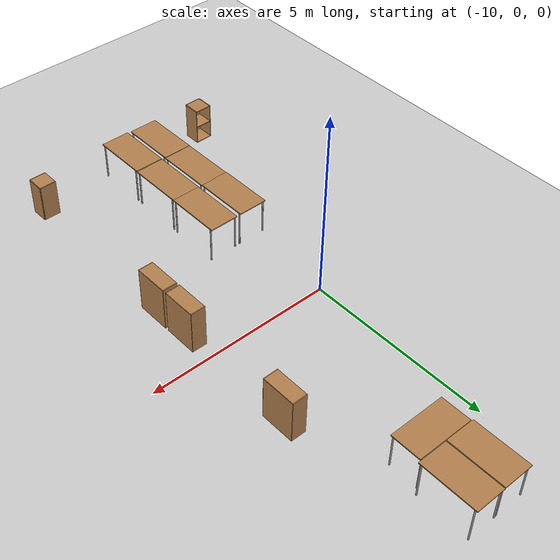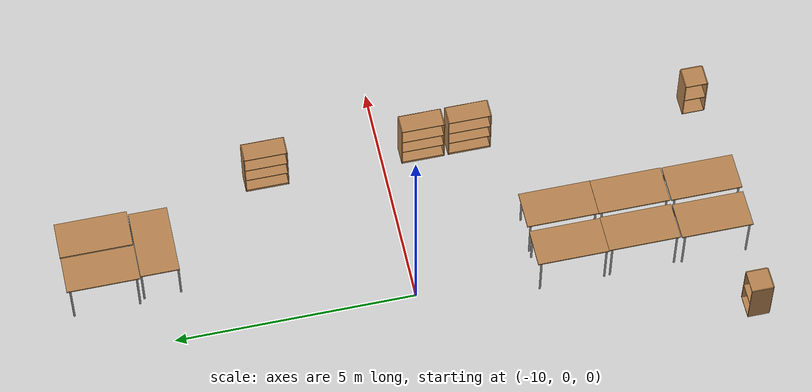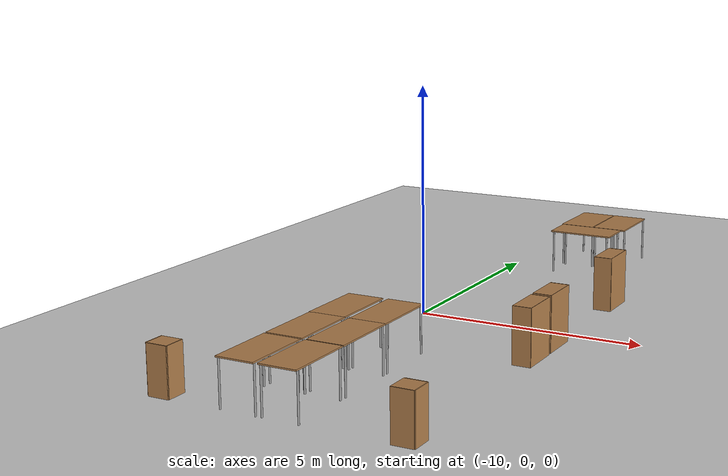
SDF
<sdf version="1.4">
 <world name="office">
  <model name="ground_plane">
   <static>1</static>
   <link name="link">
    <collision name="collision">
     <geometry><plane><normal>0 0 1</normal><size>100 100</size></plane></geometry>
     <surface><friction><ode><mu>100</mu><mu2>50</mu2></ode></friction></surface>
    </collision>
    <visual name="visual">
     <cast_shadows>0</cast_shadows>
     <geometry><plane><normal>0 0 1</normal><size>100 100</size></plane></geometry>
     <material>
      <script><uri>file://media/materials/scripts/gazebo.material</uri><name>Gazebo/Grey</name></script>
     </material>
    </visual>
    <velocity_decay><linear>0</linear><angular>0</angular></velocity_decay>
   </link>
  </model>
  <model name="bookshelf_1">
   <static>1</static>
   <link name="link">
    <inertial><mass>1</mass></inertial>
    <collision name="back">
     <pose>0 0.005 0.6 0 -0 0</pose>
     <geometry><box><size>0.9 0.01 1.2</size></box></geometry>
    </collision>
    <visual name="visual1">
     <pose>0 0.005 0.6 0 -0 0</pose>
     <geometry><box><size>0.9 0.01 1.2</size></box></geometry>
     <material>
      <script><uri>file://media/materials/scripts/gazebo.material</uri><name>Gazebo/Wood</name></script>
     </material>
    </visual>
    <collision name="left_side">
     <pose>0.45 -0.195 0.6 0 -0 0</pose>
     <geometry><box><size>0.02 0.4 1.2</size></box></geometry>
    </collision>
    <visual name="visual2">
     <pose>0.45 -0.195 0.6 0 -0 0</pose>
     <geometry><box><size>0.02 0.4 1.2</size></box></geometry>
     <material>
      <script><uri>file://media/materials/scripts/gazebo.material</uri><name>Gazebo/Wood</name></script>
     </material>
    </visual>
    <collision name="right_side">
     <pose>-0.45 -0.195 0.6 0 -0 0</pose>
     <geometry><box><size>0.02 0.4 1.2</size></box></geometry>
    </collision>
    <visual name="visual3">
     <pose>-0.45 -0.195 0.6 0 -0 0</pose>
     <geometry><box><size>0.02 0.4 1.2</size></box></geometry>
     <material>
      <script><uri>file://media/materials/scripts/gazebo.material</uri><name>Gazebo/Wood</name></script>
     </material>
    </visual>
    <collision name="bottom">
     <pose>0 -0.195 0.03 0 -0 0</pose>
     <geometry><box><size>0.88 0.4 0.06</size></box></geometry>
    </collision>
    <visual name="visual4">
     <pose>0 -0.195 0.03 0 -0 0</pose>
     <geometry><box><size>0.88 0.4 0.06</size></box></geometry>
     <material>
      <script><uri>file://media/materials/scripts/gazebo.material</uri><name>Gazebo/Wood</name></script>
     </material>
    </visual>
    <collision name="top">
     <pose>0 -0.195 1.19 0 -0 0</pose>
     <geometry><box><size>0.88 0.4 0.02</size></box></geometry>
    </collision>
    <visual name="visual5">
     <pose>0 -0.195 1.19 0 -0 0</pose>
     <geometry><box><size>0.88 0.4 0.02</size></box></geometry>
     <material>
      <script><uri>file://media/materials/scripts/gazebo.material</uri><name>Gazebo/Wood</name></script>
     </material>
    </visual>
    <collision name="low_shelf">
     <pose>0 -0.195 0.43 0 -0 0</pose>
     <geometry><box><size>0.88 0.4 0.02</size></box></geometry>
    </collision>
    <visual name="visual6">
     <pose>0 -0.195 0.43 0 -0 0</pose>
     <geometry><box><size>0.88 0.4 0.02</size></box></geometry>
     <material>
      <script><uri>file://media/materials/scripts/gazebo.material</uri><name>Gazebo/Wood</name></script>
     </material>
    </visual>
    <collision name="high_shelf">
     <pose>0 -0.195 0.8 0 -0 0</pose>
     <geometry><box><size>0.88 0.4 0.02</size></box></geometry>
    </collision>
    <visual name="visual7">
     <pose>0 -0.195 0.8 0 -0 0</pose>
     <geometry><box><size>0.88 0.4 0.02</size></box></geometry>
     <material>
      <script><uri>file://media/materials/scripts/gazebo.material</uri><name>Gazebo/Wood</name></script>
     </material>
    </visual>
    <velocity_decay><linear>0</linear><angular>0</angular></velocity_decay>
   </link>
   <pose>-6.43362 -0.854628 0 0 0 -1.5708</pose>
  </model>
  <model name="bookshelf_2">
   <static>1</static>
   <link name="link">
    <inertial><mass>1</mass></inertial>
    <collision name="back">
     <pose>0 0.005 0.6 0 -0 0</pose>
     <geometry><box><size>0.9 0.01 1.2</size></box></geometry>
    </collision>
    <visual name="visual1">
     <pose>0 0.005 0.6 0 -0 0</pose>
     <geometry><box><size>0.9 0.01 1.2</size></box></geometry>
     <material>
      <script><uri>file://media/materials/scripts/gazebo.material</uri><name>Gazebo/Wood</name></script>
     </material>
    </visual>
    <collision name="left_side">
     <pose>0.45 -0.195 0.6 0 -0 0</pose>
     <geometry><box><size>0.02 0.4 1.2</size></box></geometry>
    </collision>
    <visual name="visual2">
     <pose>0.45 -0.195 0.6 0 -0 0</pose>
     <geometry><box><size>0.02 0.4 1.2</size></box></geometry>
     <material>
      <script><uri>file://media/materials/scripts/gazebo.material</uri><name>Gazebo/Wood</name></script>
     </material>
    </visual>
    <collision name="right_side">
     <pose>-0.45 -0.195 0.6 0 -0 0</pose>
     <geometry><box><size>0.02 0.4 1.2</size></box></geometry>
    </collision>
    <visual name="visual3">
     <pose>-0.45 -0.195 0.6 0 -0 0</pose>
     <geometry><box><size>0.02 0.4 1.2</size></box></geometry>
     <material>
      <script><uri>file://media/materials/scripts/gazebo.material</uri><name>Gazebo/Wood</name></script>
     </material>
    </visual>
    <collision name="bottom">
     <pose>0 -0.195 0.03 0 -0 0</pose>
     <geometry><box><size>0.88 0.4 0.06</size></box></geometry>
    </collision>
    <visual name="visual4">
     <pose>0 -0.195 0.03 0 -0 0</pose>
     <geometry><box><size>0.88 0.4 0.06</size></box></geometry>
     <material>
      <script><uri>file://media/materials/scripts/gazebo.material</uri><name>Gazebo/Wood</name></script>
     </material>
    </visual>
    <collision name="top">
     <pose>0 -0.195 1.19 0 -0 0</pose>
     <geometry><box><size>0.88 0.4 0.02</size></box></geometry>
    </collision>
    <visual name="visual5">
     <pose>0 -0.195 1.19 0 -0 0</pose>
     <geometry><box><size>0.88 0.4 0.02</size></box></geometry>
     <material>
      <script><uri>file://media/materials/scripts/gazebo.material</uri><name>Gazebo/Wood</name></script>
     </material>
    </visual>
    <collision name="low_shelf">
     <pose>0 -0.195 0.43 0 -0 0</pose>
     <geometry><box><size>0.88 0.4 0.02</size></box></geometry>
    </collision>
    <visual name="visual6">
     <pose>0 -0.195 0.43 0 -0 0</pose>
     <geometry><box><size>0.88 0.4 0.02</size></box></geometry>
     <material>
      <script><uri>file://media/materials/scripts/gazebo.material</uri><name>Gazebo/Wood</name></script>
     </material>
    </visual>
    <collision name="high_shelf">
     <pose>0 -0.195 0.8 0 -0 0</pose>
     <geometry><box><size>0.88 0.4 0.02</size></box></geometry>
    </collision>
    <visual name="visual7">
     <pose>0 -0.195 0.8 0 -0 0</pose>
     <geometry><box><size>0.88 0.4 0.02</size></box></geometry>
     <material>
      <script><uri>file://media/materials/scripts/gazebo.material</uri><name>Gazebo/Wood</name></script>
     </material>
    </visual>
    <velocity_decay><linear>0</linear><angular>0</angular></velocity_decay>
   </link>
   <pose>-6.42598 -1.85096 0 0 0 -1.5708</pose>
  </model>
  <model name="cabinet_4">
   <static>1</static>
   <link name="cabinet_bottom_plate">
    <inertial>
     <pose>0 0 -1 0 -0 0</pose>
     <inertia><ixx>2.05</ixx><ixy>0</ixy><ixz>0</ixz><iyy>2.05</iyy><iyz>0</iyz><izz>2.05</izz></inertia>
     <mass>25</mass>
    </inertial>
    <collision name="cabinet_bottom_plate_geom">
     <pose>0 0 0.01 0 -0 0</pose>
     <geometry><box><size>0.45 0.45 0.02</size></box></geometry>
    </collision>
    <visual name="cabinet_bottom_plate_geom_visual">
     <pose>0 0 0.01 0 -0 0</pose>
     <geometry><box><size>0.45 0.45 0.02</size></box></geometry>
     <material>
      <script><uri>file://media/materials/scripts/gazebo.material</uri><name>Gazebo/Wood</name></script>
     </material>
    </visual>
    <collision name="cabinet_bottom_plate_geom_cabinet_back_plate">
     <pose>0.235 0 0.51 0 -0 0</pose>
     <geometry><box><size>0.02 0.45 1.02</size></box></geometry>
    </collision>
    <visual name="cabinet_bottom_plate_geom_cabinet_back_plate_visual">
     <pose>0.235 0 0.51 0 -0 0</pose>
     <geometry><box><size>0.02 0.45 1.02</size></box></geometry>
     <material>
      <script><uri>file://media/materials/scripts/gazebo.material</uri><name>Gazebo/Wood</name></script>
     </material>
    </visual>
    <collision name="cabinet_bottom_plate_geom_cabinet_left_plate">
     <pose>0 0.235 0.51 0 -0 0</pose>
     <geometry><box><size>0.45 0.02 1.02</size></box></geometry>
    </collision>
    <visual name="cabinet_bottom_plate_geom_cabinet_left_plate_visual">
     <pose>0 0.235 0.51 0 -0 0</pose>
     <geometry><box><size>0.45 0.02 1.02</size></box></geometry>
     <material>
      <script><uri>file://media/materials/scripts/gazebo.material</uri><name>Gazebo/Wood</name></script>
     </material>
    </visual>
    <collision name="cabinet_bottom_plate_geom_cabinet_middle_plate">
     <pose>0 0 0.51 0 -0 0</pose>
     <geometry><box><size>0.45 0.45 0.02</size></box></geometry>
    </collision>
    <visual name="cabinet_bottom_plate_geom_cabinet_middle_plate_visual">
     <pose>0 0 0.51 0 -0 0</pose>
     <geometry><box><size>0.45 0.45 0.02</size></box></geometry>
     <material>
      <script><uri>file://media/materials/scripts/gazebo.material</uri><name>Gazebo/Wood</name></script>
     </material>
    </visual>
    <collision name="cabinet_bottom_plate_geom_cabinet_right_plate">
     <pose>0 -0.235 0.51 0 -0 0</pose>
     <geometry><box><size>0.45 0.02 1.02</size></box></geometry>
    </collision>
    <visual name="cabinet_bottom_plate_geom_cabinet_right_plate_visual">
     <pose>0 -0.235 0.51 0 -0 0</pose>
     <geometry><box><size>0.45 0.02 1.02</size></box></geometry>
     <material>
      <script><uri>file://media/materials/scripts/gazebo.material</uri><name>Gazebo/Wood</name></script>
     </material>
    </visual>
    <collision name="cabinet_bottom_plate_geom_cabinet_top_plate">
     <pose>0 0 1.01 0 -0 0</pose>
     <geometry><box><size>0.45 0.45 0.02</size></box></geometry>
    </collision>
    <visual name="cabinet_bottom_plate_geom_cabinet_top_plate_visual">
     <pose>0 0 1.01 0 -0 0</pose>
     <geometry><box><size>0.45 0.45 0.02</size></box></geometry>
     <material>
      <script><uri>file://media/materials/scripts/gazebo.material</uri><name>Gazebo/Wood</name></script>
     </material>
    </visual>
    <velocity_decay><linear>0</linear><angular>0</angular></velocity_decay>
   </link>
   <pose>-11.7069 -6.71894 0 0 0 -1.5708</pose>
  </model>
  <model name="cabinet_5">
   <static>1</static>
   <link name="cabinet_bottom_plate">
    <inertial>
     <pose>0 0 -1 0 -0 0</pose>
     <inertia><ixx>2.05</ixx><ixy>0</ixy><ixz>0</ixz><iyy>2.05</iyy><iyz>0</iyz><izz>2.05</izz></inertia>
     <mass>25</mass>
    </inertial>
    <collision name="cabinet_bottom_plate_geom">
     <pose>0 0 0.01 0 -0 0</pose>
     <geometry><box><size>0.45 0.45 0.02</size></box></geometry>
    </collision>
    <visual name="cabinet_bottom_plate_geom_visual">
     <pose>0 0 0.01 0 -0 0</pose>
     <geometry><box><size>0.45 0.45 0.02</size></box></geometry>
     <material>
      <script><uri>file://media/materials/scripts/gazebo.material</uri><name>Gazebo/Wood</name></script>
     </material>
    </visual>
    <collision name="cabinet_bottom_plate_geom_cabinet_back_plate">
     <pose>0.235 0 0.51 0 -0 0</pose>
     <geometry><box><size>0.02 0.45 1.02</size></box></geometry>
    </collision>
    <visual name="cabinet_bottom_plate_geom_cabinet_back_plate_visual">
     <pose>0.235 0 0.51 0 -0 0</pose>
     <geometry><box><size>0.02 0.45 1.02</size></box></geometry>
     <material>
      <script><uri>file://media/materials/scripts/gazebo.material</uri><name>Gazebo/Wood</name></script>
     </material>
    </visual>
    <collision name="cabinet_bottom_plate_geom_cabinet_left_plate">
     <pose>0 0.235 0.51 0 -0 0</pose>
     <geometry><box><size>0.45 0.02 1.02</size></box></geometry>
    </collision>
    <visual name="cabinet_bottom_plate_geom_cabinet_left_plate_visual">
     <pose>0 0.235 0.51 0 -0 0</pose>
     <geometry><box><size>0.45 0.02 1.02</size></box></geometry>
     <material>
      <script><uri>file://media/materials/scripts/gazebo.material</uri><name>Gazebo/Wood</name></script>
     </material>
    </visual>
    <collision name="cabinet_bottom_plate_geom_cabinet_middle_plate">
     <pose>0 0 0.51 0 -0 0</pose>
     <geometry><box><size>0.45 0.45 0.02</size></box></geometry>
    </collision>
    <visual name="cabinet_bottom_plate_geom_cabinet_middle_plate_visual">
     <pose>0 0 0.51 0 -0 0</pose>
     <geometry><box><size>0.45 0.45 0.02</size></box></geometry>
     <material>
      <script><uri>file://media/materials/scripts/gazebo.material</uri><name>Gazebo/Wood</name></script>
     </material>
    </visual>
    <collision name="cabinet_bottom_plate_geom_cabinet_right_plate">
     <pose>0 -0.235 0.51 0 -0 0</pose>
     <geometry><box><size>0.45 0.02 1.02</size></box></geometry>
    </collision>
    <visual name="cabinet_bottom_plate_geom_cabinet_right_plate_visual">
     <pose>0 -0.235 0.51 0 -0 0</pose>
     <geometry><box><size>0.45 0.02 1.02</size></box></geometry>
     <material>
      <script><uri>file://media/materials/scripts/gazebo.material</uri><name>Gazebo/Wood</name></script>
     </material>
    </visual>
    <collision name="cabinet_bottom_plate_geom_cabinet_top_plate">
     <pose>0 0 1.01 0 -0 0</pose>
     <geometry><box><size>0.45 0.45 0.02</size></box></geometry>
    </collision>
    <visual name="cabinet_bottom_plate_geom_cabinet_top_plate_visual">
     <pose>0 0 1.01 0 -0 0</pose>
     <geometry><box><size>0.45 0.45 0.02</size></box></geometry>
     <material>
      <script><uri>file://media/materials/scripts/gazebo.material</uri><name>Gazebo/Wood</name></script>
     </material>
    </visual>
    <velocity_decay><linear>0</linear><angular>0</angular></velocity_decay>
   </link>
   <pose>-6.66649 -6.70658 0 0 -0 0</pose>
  </model>
  <model name="bookshelf_12">
   <static>1</static>
   <link name="link">
    <inertial><mass>1</mass></inertial>
    <collision name="back">
     <pose>0 0.005 0.6 0 -0 0</pose>
     <geometry><box><size>0.9 0.01 1.2</size></box></geometry>
    </collision>
    <visual name="visual1">
     <pose>0 0.005 0.6 0 -0 0</pose>
     <geometry><box><size>0.9 0.01 1.2</size></box></geometry>
     <material>
      <script><uri>file://media/materials/scripts/gazebo.material</uri><name>Gazebo/Wood</name></script>
     </material>
    </visual>
    <collision name="left_side">
     <pose>0.45 -0.195 0.6 0 -0 0</pose>
     <geometry><box><size>0.02 0.4 1.2</size></box></geometry>
    </collision>
    <visual name="visual2">
     <pose>0.45 -0.195 0.6 0 -0 0</pose>
     <geometry><box><size>0.02 0.4 1.2</size></box></geometry>
     <material>
      <script><uri>file://media/materials/scripts/gazebo.material</uri><name>Gazebo/Wood</name></script>
     </material>
    </visual>
    <collision name="right_side">
     <pose>-0.45 -0.195 0.6 0 -0 0</pose>
     <geometry><box><size>0.02 0.4 1.2</size></box></geometry>
    </collision>
    <visual name="visual3">
     <pose>-0.45 -0.195 0.6 0 -0 0</pose>
     <geometry><box><size>0.02 0.4 1.2</size></box></geometry>
     <material>
      <script><uri>file://media/materials/scripts/gazebo.material</uri><name>Gazebo/Wood</name></script>
     </material>
    </visual>
    <collision name="bottom">
     <pose>0 -0.195 0.03 0 -0 0</pose>
     <geometry><box><size>0.88 0.4 0.06</size></box></geometry>
    </collision>
    <visual name="visual4">
     <pose>0 -0.195 0.03 0 -0 0</pose>
     <geometry><box><size>0.88 0.4 0.06</size></box></geometry>
     <material>
      <script><uri>file://media/materials/scripts/gazebo.material</uri><name>Gazebo/Wood</name></script>
     </material>
    </visual>
    <collision name="top">
     <pose>0 -0.195 1.19 0 -0 0</pose>
     <geometry><box><size>0.88 0.4 0.02</size></box></geometry>
    </collision>
    <visual name="visual5">
     <pose>0 -0.195 1.19 0 -0 0</pose>
     <geometry><box><size>0.88 0.4 0.02</size></box></geometry>
     <material>
      <script><uri>file://media/materials/scripts/gazebo.material</uri><name>Gazebo/Wood</name></script>
     </material>
    </visual>
    <collision name="low_shelf">
     <pose>0 -0.195 0.43 0 -0 0</pose>
     <geometry><box><size>0.88 0.4 0.02</size></box></geometry>
    </collision>
    <visual name="visual6">
     <pose>0 -0.195 0.43 0 -0 0</pose>
     <geometry><box><size>0.88 0.4 0.02</size></box></geometry>
     <material>
      <script><uri>file://media/materials/scripts/gazebo.material</uri><name>Gazebo/Wood</name></script>
     </material>
    </visual>
    <collision name="high_shelf">
     <pose>0 -0.195 0.8 0 -0 0</pose>
     <geometry><box><size>0.88 0.4 0.02</size></box></geometry>
    </collision>
    <visual name="visual7">
     <pose>0 -0.195 0.8 0 -0 0</pose>
     <geometry><box><size>0.88 0.4 0.02</size></box></geometry>
     <material>
      <script><uri>file://media/materials/scripts/gazebo.material</uri><name>Gazebo/Wood</name></script>
     </material>
    </visual>
    <velocity_decay><linear>0</linear><angular>0</angular></velocity_decay>
   </link>
   <pose>-6.41767 2.4645 0 0 0 -1.5708</pose>
  </model>
  <model name="table_0">
   <static>1</static>
   <link name="link">
    <collision name="surface">
     <pose>0 0 1 0 -0 0</pose>
     <geometry><box><size>1.5 0.8 0.03</size></box></geometry>
    </collision>
    <visual name="visual1">
     <pose>0 0 1 0 -0 0</pose>
     <geometry><box><size>1.5 0.8 0.03</size></box></geometry>
     <material>
      <script><uri>file://media/materials/scripts/gazebo.material</uri><name>Gazebo/Wood</name></script>
     </material>
    </visual>
    <collision name="front_left_leg">
     <pose>0.68 0.38 0.5 0 -0 0</pose>
     <geometry><cylinder><radius>0.02</radius><length>1</length></cylinder></geometry>
    </collision>
    <visual name="front_left_leg">
     <pose>0.68 0.38 0.5 0 -0 0</pose>
     <geometry><cylinder><radius>0.02</radius><length>1</length></cylinder></geometry>
     <material>
      <script><uri>file://media/materials/scripts/gazebo.material</uri><name>Gazebo/Grey</name></script>
     </material>
    </visual>
    <collision name="front_right_leg">
     <pose>0.68 -0.38 0.5 0 -0 0</pose>
     <geometry><cylinder><radius>0.02</radius><length>1</length></cylinder></geometry>
    </collision>
    <visual name="front_right_leg">
     <pose>0.68 -0.38 0.5 0 -0 0</pose>
     <geometry><cylinder><radius>0.02</radius><length>1</length></cylinder></geometry>
     <material>
      <script><uri>file://media/materials/scripts/gazebo.material</uri><name>Gazebo/Grey</name></script>
     </material>
    </visual>
    <collision name="back_right_leg">
     <pose>-0.68 -0.38 0.5 0 -0 0</pose>
     <geometry><cylinder><radius>0.02</radius><length>1</length></cylinder></geometry>
    </collision>
    <visual name="back_right_leg">
     <pose>-0.68 -0.38 0.5 0 -0 0</pose>
     <geometry><cylinder><radius>0.02</radius><length>1</length></cylinder></geometry>
     <material>
      <script><uri>file://media/materials/scripts/gazebo.material</uri><name>Gazebo/Grey</name></script>
     </material>
    </visual>
    <collision name="back_left_leg">
     <pose>-0.68 0.38 0.5 0 -0 0</pose>
     <geometry><cylinder><radius>0.02</radius><length>1</length></cylinder></geometry>
    </collision>
    <visual name="back_left_leg">
     <pose>-0.68 0.38 0.5 0 -0 0</pose>
     <geometry><cylinder><radius>0.02</radius><length>1</length></cylinder></geometry>
     <material>
      <script><uri>file://media/materials/scripts/gazebo.material</uri><name>Gazebo/Grey</name></script>
     </material>
    </visual>
    <velocity_decay><linear>0</linear><angular>0</angular></velocity_decay>
   </link>
   <pose>-9.09182 -4.68955 0 0 0 -1.5708</pose>
  </model>
  <model name="table_1">
   <static>1</static>
   <link name="link">
    <collision name="surface">
     <pose>0 0 1 0 -0 0</pose>
     <geometry><box><size>1.5 0.8 0.03</size></box></geometry>
    </collision>
    <visual name="visual1">
     <pose>0 0 1 0 -0 0</pose>
     <geometry><box><size>1.5 0.8 0.03</size></box></geometry>
     <material>
      <script><uri>file://media/materials/scripts/gazebo.material</uri><name>Gazebo/Wood</name></script>
     </material>
    </visual>
    <collision name="front_left_leg">
     <pose>0.68 0.38 0.5 0 -0 0</pose>
     <geometry><cylinder><radius>0.02</radius><length>1</length></cylinder></geometry>
    </collision>
    <visual name="front_left_leg">
     <pose>0.68 0.38 0.5 0 -0 0</pose>
     <geometry><cylinder><radius>0.02</radius><length>1</length></cylinder></geometry>
     <material>
      <script><uri>file://media/materials/scripts/gazebo.material</uri><name>Gazebo/Grey</name></script>
     </material>
    </visual>
    <collision name="front_right_leg">
     <pose>0.68 -0.38 0.5 0 -0 0</pose>
     <geometry><cylinder><radius>0.02</radius><length>1</length></cylinder></geometry>
    </collision>
    <visual name="front_right_leg">
     <pose>0.68 -0.38 0.5 0 -0 0</pose>
     <geometry><cylinder><radius>0.02</radius><length>1</length></cylinder></geometry>
     <material>
      <script><uri>file://media/materials/scripts/gazebo.material</uri><name>Gazebo/Grey</name></script>
     </material>
    </visual>
    <collision name="back_right_leg">
     <pose>-0.68 -0.38 0.5 0 -0 0</pose>
     <geometry><cylinder><radius>0.02</radius><length>1</length></cylinder></geometry>
    </collision>
    <visual name="back_right_leg">
     <pose>-0.68 -0.38 0.5 0 -0 0</pose>
     <geometry><cylinder><radius>0.02</radius><length>1</length></cylinder></geometry>
     <material>
      <script><uri>file://media/materials/scripts/gazebo.material</uri><name>Gazebo/Grey</name></script>
     </material>
    </visual>
    <collision name="back_left_leg">
     <pose>-0.68 0.38 0.5 0 -0 0</pose>
     <geometry><cylinder><radius>0.02</radius><length>1</length></cylinder></geometry>
    </collision>
    <visual name="back_left_leg">
     <pose>-0.68 0.38 0.5 0 -0 0</pose>
     <geometry><cylinder><radius>0.02</radius><length>1</length></cylinder></geometry>
     <material>
      <script><uri>file://media/materials/scripts/gazebo.material</uri><name>Gazebo/Grey</name></script>
     </material>
    </visual>
    <velocity_decay><linear>0</linear><angular>0</angular></velocity_decay>
   </link>
   <pose>-9.10009 -6.21783 0 0 0 -1.5708</pose>
  </model>
  <model name="table_2">
   <static>1</static>
   <link name="link">
    <collision name="surface">
     <pose>0 0 1 0 -0 0</pose>
     <geometry><box><size>1.5 0.8 0.03</size></box></geometry>
    </collision>
    <visual name="visual1">
     <pose>0 0 1 0 -0 0</pose>
     <geometry><box><size>1.5 0.8 0.03</size></box></geometry>
     <material>
      <script><uri>file://media/materials/scripts/gazebo.material</uri><name>Gazebo/Wood</name></script>
     </material>
    </visual>
    <collision name="front_left_leg">
     <pose>0.68 0.38 0.5 0 -0 0</pose>
     <geometry><cylinder><radius>0.02</radius><length>1</length></cylinder></geometry>
    </collision>
    <visual name="front_left_leg">
     <pose>0.68 0.38 0.5 0 -0 0</pose>
     <geometry><cylinder><radius>0.02</radius><length>1</length></cylinder></geometry>
     <material>
      <script><uri>file://media/materials/scripts/gazebo.material</uri><name>Gazebo/Grey</name></script>
     </material>
    </visual>
    <collision name="front_right_leg">
     <pose>0.68 -0.38 0.5 0 -0 0</pose>
     <geometry><cylinder><radius>0.02</radius><length>1</length></cylinder></geometry>
    </collision>
    <visual name="front_right_leg">
     <pose>0.68 -0.38 0.5 0 -0 0</pose>
     <geometry><cylinder><radius>0.02</radius><length>1</length></cylinder></geometry>
     <material>
      <script><uri>file://media/materials/scripts/gazebo.material</uri><name>Gazebo/Grey</name></script>
     </material>
    </visual>
    <collision name="back_right_leg">
     <pose>-0.68 -0.38 0.5 0 -0 0</pose>
     <geometry><cylinder><radius>0.02</radius><length>1</length></cylinder></geometry>
    </collision>
    <visual name="back_right_leg">
     <pose>-0.68 -0.38 0.5 0 -0 0</pose>
     <geometry><cylinder><radius>0.02</radius><length>1</length></cylinder></geometry>
     <material>
      <script><uri>file://media/materials/scripts/gazebo.material</uri><name>Gazebo/Grey</name></script>
     </material>
    </visual>
    <collision name="back_left_leg">
     <pose>-0.68 0.38 0.5 0 -0 0</pose>
     <geometry><cylinder><radius>0.02</radius><length>1</length></cylinder></geometry>
    </collision>
    <visual name="back_left_leg">
     <pose>-0.68 0.38 0.5 0 -0 0</pose>
     <geometry><cylinder><radius>0.02</radius><length>1</length></cylinder></geometry>
     <material>
      <script><uri>file://media/materials/scripts/gazebo.material</uri><name>Gazebo/Grey</name></script>
     </material>
    </visual>
    <velocity_decay><linear>0</linear><angular>0</angular></velocity_decay>
   </link>
   <pose>-9.98872 -4.67856 0 0 0 -1.5708</pose>
  </model>
  <model name="table_3">
   <static>1</static>
   <link name="link">
    <collision name="surface">
     <pose>0 0 1 0 -0 0</pose>
     <geometry><box><size>1.5 0.8 0.03</size></box></geometry>
    </collision>
    <visual name="visual1">
     <pose>0 0 1 0 -0 0</pose>
     <geometry><box><size>1.5 0.8 0.03</size></box></geometry>
     <material>
      <script><uri>file://media/materials/scripts/gazebo.material</uri><name>Gazebo/Wood</name></script>
     </material>
    </visual>
    <collision name="front_left_leg">
     <pose>0.68 0.38 0.5 0 -0 0</pose>
     <geometry><cylinder><radius>0.02</radius><length>1</length></cylinder></geometry>
    </collision>
    <visual name="front_left_leg">
     <pose>0.68 0.38 0.5 0 -0 0</pose>
     <geometry><cylinder><radius>0.02</radius><length>1</length></cylinder></geometry>
     <material>
      <script><uri>file://media/materials/scripts/gazebo.material</uri><name>Gazebo/Grey</name></script>
     </material>
    </visual>
    <collision name="front_right_leg">
     <pose>0.68 -0.38 0.5 0 -0 0</pose>
     <geometry><cylinder><radius>0.02</radius><length>1</length></cylinder></geometry>
    </collision>
    <visual name="front_right_leg">
     <pose>0.68 -0.38 0.5 0 -0 0</pose>
     <geometry><cylinder><radius>0.02</radius><length>1</length></cylinder></geometry>
     <material>
      <script><uri>file://media/materials/scripts/gazebo.material</uri><name>Gazebo/Grey</name></script>
     </material>
    </visual>
    <collision name="back_right_leg">
     <pose>-0.68 -0.38 0.5 0 -0 0</pose>
     <geometry><cylinder><radius>0.02</radius><length>1</length></cylinder></geometry>
    </collision>
    <visual name="back_right_leg">
     <pose>-0.68 -0.38 0.5 0 -0 0</pose>
     <geometry><cylinder><radius>0.02</radius><length>1</length></cylinder></geometry>
     <material>
      <script><uri>file://media/materials/scripts/gazebo.material</uri><name>Gazebo/Grey</name></script>
     </material>
    </visual>
    <collision name="back_left_leg">
     <pose>-0.68 0.38 0.5 0 -0 0</pose>
     <geometry><cylinder><radius>0.02</radius><length>1</length></cylinder></geometry>
    </collision>
    <visual name="back_left_leg">
     <pose>-0.68 0.38 0.5 0 -0 0</pose>
     <geometry><cylinder><radius>0.02</radius><length>1</length></cylinder></geometry>
     <material>
      <script><uri>file://media/materials/scripts/gazebo.material</uri><name>Gazebo/Grey</name></script>
     </material>
    </visual>
    <velocity_decay><linear>0</linear><angular>0</angular></velocity_decay>
   </link>
   <pose>-10.004 -6.20408 -0.01 0 0 -1.5708</pose>
  </model>
  <model name="table_4">
   <static>1</static>
   <link name="link">
    <collision name="surface">
     <pose>0 0 1 0 -0 0</pose>
     <geometry><box><size>1.5 0.8 0.03</size></box></geometry>
    </collision>
    <visual name="visual1">
     <pose>0 0 1 0 -0 0</pose>
     <geometry><box><size>1.5 0.8 0.03</size></box></geometry>
     <material>
      <script><uri>file://media/materials/scripts/gazebo.material</uri><name>Gazebo/Wood</name></script>
     </material>
    </visual>
    <collision name="front_left_leg">
     <pose>0.68 0.38 0.5 0 -0 0</pose>
     <geometry><cylinder><radius>0.02</radius><length>1</length></cylinder></geometry>
    </collision>
    <visual name="front_left_leg">
     <pose>0.68 0.38 0.5 0 -0 0</pose>
     <geometry><cylinder><radius>0.02</radius><length>1</length></cylinder></geometry>
     <material>
      <script><uri>file://media/materials/scripts/gazebo.material</uri><name>Gazebo/Grey</name></script>
     </material>
    </visual>
    <collision name="front_right_leg">
     <pose>0.68 -0.38 0.5 0 -0 0</pose>
     <geometry><cylinder><radius>0.02</radius><length>1</length></cylinder></geometry>
    </collision>
    <visual name="front_right_leg">
     <pose>0.68 -0.38 0.5 0 -0 0</pose>
     <geometry><cylinder><radius>0.02</radius><length>1</length></cylinder></geometry>
     <material>
      <script><uri>file://media/materials/scripts/gazebo.material</uri><name>Gazebo/Grey</name></script>
     </material>
    </visual>
    <collision name="back_right_leg">
     <pose>-0.68 -0.38 0.5 0 -0 0</pose>
     <geometry><cylinder><radius>0.02</radius><length>1</length></cylinder></geometry>
    </collision>
    <visual name="back_right_leg">
     <pose>-0.68 -0.38 0.5 0 -0 0</pose>
     <geometry><cylinder><radius>0.02</radius><length>1</length></cylinder></geometry>
     <material>
      <script><uri>file://media/materials/scripts/gazebo.material</uri><name>Gazebo/Grey</name></script>
     </material>
    </visual>
    <collision name="back_left_leg">
     <pose>-0.68 0.38 0.5 0 -0 0</pose>
     <geometry><cylinder><radius>0.02</radius><length>1</length></cylinder></geometry>
    </collision>
    <visual name="back_left_leg">
     <pose>-0.68 0.38 0.5 0 -0 0</pose>
     <geometry><cylinder><radius>0.02</radius><length>1</length></cylinder></geometry>
     <material>
      <script><uri>file://media/materials/scripts/gazebo.material</uri><name>Gazebo/Grey</name></script>
     </material>
    </visual>
    <velocity_decay><linear>0</linear><angular>0</angular></velocity_decay>
   </link>
   <pose>-10.0031 -3.19713 0 0 0 -1.5708</pose>
  </model>
  <model name="table_5">
   <static>1</static>
   <link name="link">
    <collision name="surface">
     <pose>0 0 1 0 -0 0</pose>
     <geometry><box><size>1.5 0.8 0.03</size></box></geometry>
    </collision>
    <visual name="visual1">
     <pose>0 0 1 0 -0 0</pose>
     <geometry><box><size>1.5 0.8 0.03</size></box></geometry>
     <material>
      <script><uri>file://media/materials/scripts/gazebo.material</uri><name>Gazebo/Wood</name></script>
     </material>
    </visual>
    <collision name="front_left_leg">
     <pose>0.68 0.38 0.5 0 -0 0</pose>
     <geometry><cylinder><radius>0.02</radius><length>1</length></cylinder></geometry>
    </collision>
    <visual name="front_left_leg">
     <pose>0.68 0.38 0.5 0 -0 0</pose>
     <geometry><cylinder><radius>0.02</radius><length>1</length></cylinder></geometry>
     <material>
      <script><uri>file://media/materials/scripts/gazebo.material</uri><name>Gazebo/Grey</name></script>
     </material>
    </visual>
    <collision name="front_right_leg">
     <pose>0.68 -0.38 0.5 0 -0 0</pose>
     <geometry><cylinder><radius>0.02</radius><length>1</length></cylinder></geometry>
    </collision>
    <visual name="front_right_leg">
     <pose>0.68 -0.38 0.5 0 -0 0</pose>
     <geometry><cylinder><radius>0.02</radius><length>1</length></cylinder></geometry>
     <material>
      <script><uri>file://media/materials/scripts/gazebo.material</uri><name>Gazebo/Grey</name></script>
     </material>
    </visual>
    <collision name="back_right_leg">
     <pose>-0.68 -0.38 0.5 0 -0 0</pose>
     <geometry><cylinder><radius>0.02</radius><length>1</length></cylinder></geometry>
    </collision>
    <visual name="back_right_leg">
     <pose>-0.68 -0.38 0.5 0 -0 0</pose>
     <geometry><cylinder><radius>0.02</radius><length>1</length></cylinder></geometry>
     <material>
      <script><uri>file://media/materials/scripts/gazebo.material</uri><name>Gazebo/Grey</name></script>
     </material>
    </visual>
    <collision name="back_left_leg">
     <pose>-0.68 0.38 0.5 0 -0 0</pose>
     <geometry><cylinder><radius>0.02</radius><length>1</length></cylinder></geometry>
    </collision>
    <visual name="back_left_leg">
     <pose>-0.68 0.38 0.5 0 -0 0</pose>
     <geometry><cylinder><radius>0.02</radius><length>1</length></cylinder></geometry>
     <material>
      <script><uri>file://media/materials/scripts/gazebo.material</uri><name>Gazebo/Grey</name></script>
     </material>
    </visual>
    <velocity_decay><linear>0</linear><angular>0</angular></velocity_decay>
   </link>
   <pose>-9.08741 -3.18938 0 0 0 -1.5708</pose>
  </model>
  <model name="table_13">
   <static>1</static>
   <link name="link">
    <collision name="surface">
     <pose>0 0 1 0 -0 0</pose>
     <geometry><box><size>1.5 0.8 0.03</size></box></geometry>
    </collision>
    <visual name="visual1">
     <pose>0 0 1 0 -0 0</pose>
     <geometry><box><size>1.5 0.8 0.03</size></box></geometry>
     <material>
      <script><uri>file://media/materials/scripts/gazebo.material</uri><name>Gazebo/Wood</name></script>
     </material>
    </visual>
    <collision name="front_left_leg">
     <pose>0.68 0.38 0.5 0 -0 0</pose>
     <geometry><cylinder><radius>0.02</radius><length>1</length></cylinder></geometry>
    </collision>
    <visual name="front_left_leg">
     <pose>0.68 0.38 0.5 0 -0 0</pose>
     <geometry><cylinder><radius>0.02</radius><length>1</length></cylinder></geometry>
     <material>
      <script><uri>file://media/materials/scripts/gazebo.material</uri><name>Gazebo/Grey</name></script>
     </material>
    </visual>
    <collision name="front_right_leg">
     <pose>0.68 -0.38 0.5 0 -0 0</pose>
     <geometry><cylinder><radius>0.02</radius><length>1</length></cylinder></geometry>
    </collision>
    <visual name="front_right_leg">
     <pose>0.68 -0.38 0.5 0 -0 0</pose>
     <geometry><cylinder><radius>0.02</radius><length>1</length></cylinder></geometry>
     <material>
      <script><uri>file://media/materials/scripts/gazebo.material</uri><name>Gazebo/Grey</name></script>
     </material>
    </visual>
    <collision name="back_right_leg">
     <pose>-0.68 -0.38 0.5 0 -0 0</pose>
     <geometry><cylinder><radius>0.02</radius><length>1</length></cylinder></geometry>
    </collision>
    <visual name="back_right_leg">
     <pose>-0.68 -0.38 0.5 0 -0 0</pose>
     <geometry><cylinder><radius>0.02</radius><length>1</length></cylinder></geometry>
     <material>
      <script><uri>file://media/materials/scripts/gazebo.material</uri><name>Gazebo/Grey</name></script>
     </material>
    </visual>
    <collision name="back_left_leg">
     <pose>-0.68 0.38 0.5 0 -0 0</pose>
     <geometry><cylinder><radius>0.02</radius><length>1</length></cylinder></geometry>
    </collision>
    <visual name="back_left_leg">
     <pose>-0.68 0.38 0.5 0 -0 0</pose>
     <geometry><cylinder><radius>0.02</radius><length>1</length></cylinder></geometry>
     <material>
      <script><uri>file://media/materials/scripts/gazebo.material</uri><name>Gazebo/Grey</name></script>
     </material>
    </visual>
    <velocity_decay><linear>0</linear><angular>0</angular></velocity_decay>
   </link>
   <pose>-8.20617 5.05478 0 0 -0 0</pose>
  </model>
  <model name="table_14">
   <static>1</static>
   <link name="link">
    <collision name="surface">
     <pose>0 0 1 0 -0 0</pose>
     <geometry><box><size>1.5 0.8 0.03</size></box></geometry>
    </collision>
    <visual name="visual1">
     <pose>0 0 1 0 -0 0</pose>
     <geometry><box><size>1.5 0.8 0.03</size></box></geometry>
     <material>
      <script><uri>file://media/materials/scripts/gazebo.material</uri><name>Gazebo/Wood</name></script>
     </material>
    </visual>
    <collision name="front_left_leg">
     <pose>0.68 0.38 0.5 0 -0 0</pose>
     <geometry><cylinder><radius>0.02</radius><length>1</length></cylinder></geometry>
    </collision>
    <visual name="front_left_leg">
     <pose>0.68 0.38 0.5 0 -0 0</pose>
     <geometry><cylinder><radius>0.02</radius><length>1</length></cylinder></geometry>
     <material>
      <script><uri>file://media/materials/scripts/gazebo.material</uri><name>Gazebo/Grey</name></script>
     </material>
    </visual>
    <collision name="front_right_leg">
     <pose>0.68 -0.38 0.5 0 -0 0</pose>
     <geometry><cylinder><radius>0.02</radius><length>1</length></cylinder></geometry>
    </collision>
    <visual name="front_right_leg">
     <pose>0.68 -0.38 0.5 0 -0 0</pose>
     <geometry><cylinder><radius>0.02</radius><length>1</length></cylinder></geometry>
     <material>
      <script><uri>file://media/materials/scripts/gazebo.material</uri><name>Gazebo/Grey</name></script>
     </material>
    </visual>
    <collision name="back_right_leg">
     <pose>-0.68 -0.38 0.5 0 -0 0</pose>
     <geometry><cylinder><radius>0.02</radius><length>1</length></cylinder></geometry>
    </collision>
    <visual name="back_right_leg">
     <pose>-0.68 -0.38 0.5 0 -0 0</pose>
     <geometry><cylinder><radius>0.02</radius><length>1</length></cylinder></geometry>
     <material>
      <script><uri>file://media/materials/scripts/gazebo.material</uri><name>Gazebo/Grey</name></script>
     </material>
    </visual>
    <collision name="back_left_leg">
     <pose>-0.68 0.38 0.5 0 -0 0</pose>
     <geometry><cylinder><radius>0.02</radius><length>1</length></cylinder></geometry>
    </collision>
    <visual name="back_left_leg">
     <pose>-0.68 0.38 0.5 0 -0 0</pose>
     <geometry><cylinder><radius>0.02</radius><length>1</length></cylinder></geometry>
     <material>
      <script><uri>file://media/materials/scripts/gazebo.material</uri><name>Gazebo/Grey</name></script>
     </material>
    </visual>
    <velocity_decay><linear>0</linear><angular>0</angular></velocity_decay>
   </link>
   <pose>-7.77496 6.22611 0 0 -0 1.5708</pose>
  </model>
  <model name="table_15">
   <static>1</static>
   <link name="link">
    <collision name="surface">
     <pose>0 0 1 0 -0 0</pose>
     <geometry><box><size>1.5 0.8 0.03</size></box></geometry>
    </collision>
    <visual name="visual1">
     <pose>0 0 1 0 -0 0</pose>
     <geometry><box><size>1.5 0.8 0.03</size></box></geometry>
     <material>
      <script><uri>file://media/materials/scripts/gazebo.material</uri><name>Gazebo/Wood</name></script>
     </material>
    </visual>
    <collision name="front_left_leg">
     <pose>0.68 0.38 0.5 0 -0 0</pose>
     <geometry><cylinder><radius>0.02</radius><length>1</length></cylinder></geometry>
    </collision>
    <visual name="front_left_leg">
     <pose>0.68 0.38 0.5 0 -0 0</pose>
     <geometry><cylinder><radius>0.02</radius><length>1</length></cylinder></geometry>
     <material>
      <script><uri>file://media/materials/scripts/gazebo.material</uri><name>Gazebo/Grey</name></script>
     </material>
    </visual>
    <collision name="front_right_leg">
     <pose>0.68 -0.38 0.5 0 -0 0</pose>
     <geometry><cylinder><radius>0.02</radius><length>1</length></cylinder></geometry>
    </collision>
    <visual name="front_right_leg">
     <pose>0.68 -0.38 0.5 0 -0 0</pose>
     <geometry><cylinder><radius>0.02</radius><length>1</length></cylinder></geometry>
     <material>
      <script><uri>file://media/materials/scripts/gazebo.material</uri><name>Gazebo/Grey</name></script>
     </material>
    </visual>
    <collision name="back_right_leg">
     <pose>-0.68 -0.38 0.5 0 -0 0</pose>
     <geometry><cylinder><radius>0.02</radius><length>1</length></cylinder></geometry>
    </collision>
    <visual name="back_right_leg">
     <pose>-0.68 -0.38 0.5 0 -0 0</pose>
     <geometry><cylinder><radius>0.02</radius><length>1</length></cylinder></geometry>
     <material>
      <script><uri>file://media/materials/scripts/gazebo.material</uri><name>Gazebo/Grey</name></script>
     </material>
    </visual>
    <collision name="back_left_leg">
     <pose>-0.68 0.38 0.5 0 -0 0</pose>
     <geometry><cylinder><radius>0.02</radius><length>1</length></cylinder></geometry>
    </collision>
    <visual name="back_left_leg">
     <pose>-0.68 0.38 0.5 0 -0 0</pose>
     <geometry><cylinder><radius>0.02</radius><length>1</length></cylinder></geometry>
     <material>
      <script><uri>file://media/materials/scripts/gazebo.material</uri><name>Gazebo/Grey</name></script>
     </material>
    </visual>
    <velocity_decay><linear>0</linear><angular>0</angular></velocity_decay>
   </link>
   <pose>-8.59806 6.21773 0 0 -0 1.5708</pose>
  </model>
 </world>
</sdf>
